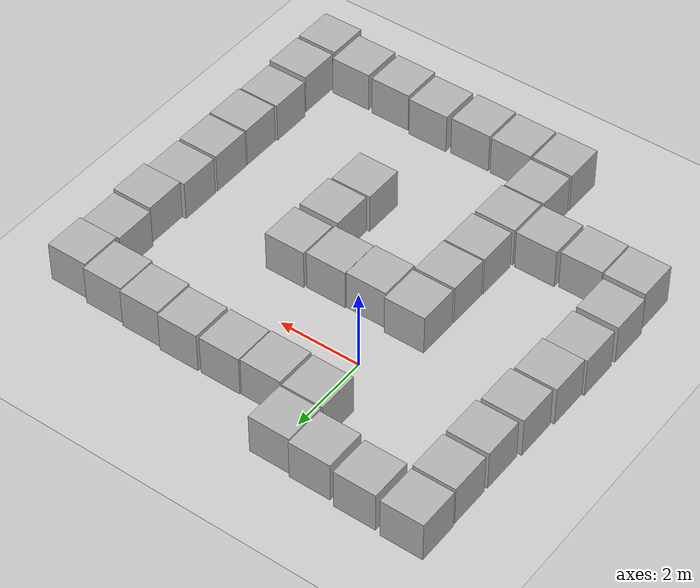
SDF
<sdf version='1.9'>
  <world name='empty'>
    <physics name='1ms' type='ignored'>
      <max_step_size>0.001</max_step_size>
      <real_time_factor>1</real_time_factor>
      <real_time_update_rate>1000</real_time_update_rate>
    </physics>
    <plugin name='gz::sim::systems::Physics' filename='ignition-gazebo-physics-system'/>
    <plugin name='gz::sim::systems::UserCommands' filename='ignition-gazebo-user-commands-system'/>
    <plugin name='gz::sim::systems::SceneBroadcaster' filename='ignition-gazebo-scene-broadcaster-system'/>
    <plugin name='gz::sim::systems::Contact' filename='ignition-gazebo-contact-system'/>
    <gravity>0 0 -9.8</gravity>
    <magnetic_field>6e-06 2.3e-05 -4.2e-05</magnetic_field>
    <atmosphere type='adiabatic'/>
    <scene>
      <ambient>0.4 0.4 0.4 1</ambient>
      <background>0.7 0.7 0.7 1</background>
      <shadows>true</shadows>
    </scene>
    <model name='ground_plane'>
      <static>true</static>
      <link name='link'>
        <collision name='collision'>
          <geometry>
            <plane>
              <normal>0 0 1</normal>
              <size>100 100</size>
            </plane>
          </geometry>
          <surface>
            <friction>
              <ode/>
            </friction>
            <bounce/>
            <contact/>
          </surface>
        </collision>
        <visual name='visual'>
          <geometry>
            <plane>
              <normal>0 0 1</normal>
              <size>100 100</size>
            </plane>
          </geometry>
          <material>
            <ambient>0.8 0.8 0.8 1</ambient>
            <diffuse>0.8 0.8 0.8 1</diffuse>
            <specular>0.8 0.8 0.8 1</specular>
          </material>
        </visual>
        <pose>0 0 0 0 -0 0</pose>
        <inertial>
          <pose>0 0 0 0 -0 0</pose>
          <mass>1</mass>
          <inertia>
            <ixx>1</ixx>
            <ixy>0</ixy>
            <ixz>0</ixz>
            <iyy>1</iyy>
            <iyz>0</iyz>
            <izz>1</izz>
          </inertia>
        </inertial>
        <enable_wind>false</enable_wind>
      </link>
      <pose>0 0 0 0 -0 0</pose>
      <self_collide>false</self_collide>
    </model>
    <model name='box'>
      <pose>-0.363355 -1.55008 0.5 0 -0 0</pose>
      <link name='box_link'>
        <inertial>
          <inertia>
            <ixx>0.16666</ixx>
            <ixy>0</ixy>
            <ixz>0</ixz>
            <iyy>0.16666</iyy>
            <iyz>0</iyz>
            <izz>0.16666</izz>
          </inertia>
          <mass>1</mass>
          <pose>0 0 0 0 -0 0</pose>
        </inertial>
        <collision name='box_collision'>
          <geometry>
            <box>
              <size>1 1 1</size>
            </box>
          </geometry>
          <surface>
            <friction>
              <ode/>
            </friction>
            <bounce/>
            <contact/>
          </surface>
        </collision>
        <visual name='box_visual'>
          <geometry>
            <box>
              <size>1 1 1</size>
            </box>
          </geometry>
          <material>
            <ambient>0.3 0.3 0.3 1</ambient>
            <diffuse>0.7 0.7 0.7 1</diffuse>
            <specular>1 1 1 1</specular>
          </material>
        </visual>
        <pose>0 0 0 0 -0 0</pose>
        <enable_wind>false</enable_wind>
      </link>
      <static>false</static>
      <self_collide>false</self_collide>
    </model>
    <model name='box_0'>
      <pose>-0.36377 -2.60974 0.5 0 -0 0</pose>
      <link name='box_link'>
        <inertial>
          <inertia>
            <ixx>0.16666</ixx>
            <ixy>0</ixy>
            <ixz>0</ixz>
            <iyy>0.16666</iyy>
            <iyz>0</iyz>
            <izz>0.16666</izz>
          </inertia>
          <mass>1</mass>
          <pose>0 0 0 0 -0 0</pose>
        </inertial>
        <collision name='box_collision'>
          <geometry>
            <box>
              <size>1 1 1</size>
            </box>
          </geometry>
          <surface>
            <friction>
              <ode/>
            </friction>
            <bounce/>
            <contact/>
          </surface>
        </collision>
        <visual name='box_visual'>
          <geometry>
            <box>
              <size>1 1 1</size>
            </box>
          </geometry>
          <material>
            <ambient>0.3 0.3 0.3 1</ambient>
            <diffuse>0.7 0.7 0.7 1</diffuse>
            <specular>1 1 1 1</specular>
          </material>
        </visual>
        <pose>0 0 0 0 -0 0</pose>
        <enable_wind>false</enable_wind>
      </link>
      <static>false</static>
      <self_collide>false</self_collide>
    </model>
    <model name='box_1'>
      <pose>-0.375944 -3.64921 0.5 0 -0 0</pose>
      <link name='box_link'>
        <inertial>
          <inertia>
            <ixx>0.16666</ixx>
            <ixy>0</ixy>
            <ixz>0</ixz>
            <iyy>0.16666</iyy>
            <iyz>0</iyz>
            <izz>0.16666</izz>
          </inertia>
          <mass>1</mass>
          <pose>0 0 0 0 -0 0</pose>
        </inertial>
        <collision name='box_collision'>
          <geometry>
            <box>
              <size>1 1 1</size>
            </box>
          </geometry>
          <surface>
            <friction>
              <ode/>
            </friction>
            <bounce/>
            <contact/>
          </surface>
        </collision>
        <visual name='box_visual'>
          <geometry>
            <box>
              <size>1 1 1</size>
            </box>
          </geometry>
          <material>
            <ambient>0.3 0.3 0.3 1</ambient>
            <diffuse>0.7 0.7 0.7 1</diffuse>
            <specular>1 1 1 1</specular>
          </material>
        </visual>
        <pose>0 0 0 0 -0 0</pose>
        <enable_wind>false</enable_wind>
      </link>
      <static>false</static>
      <self_collide>false</self_collide>
    </model>
    <model name='box_2'>
      <pose>-0.389689 -4.73155 0.5 0 -0 0</pose>
      <link name='box_link'>
        <inertial>
          <inertia>
            <ixx>0.16666</ixx>
            <ixy>0</ixy>
            <ixz>0</ixz>
            <iyy>0.16666</iyy>
            <iyz>0</iyz>
            <izz>0.16666</izz>
          </inertia>
          <mass>1</mass>
          <pose>0 0 0 0 -0 0</pose>
        </inertial>
        <collision name='box_collision'>
          <geometry>
            <box>
              <size>1 1 1</size>
            </box>
          </geometry>
          <surface>
            <friction>
              <ode/>
            </friction>
            <bounce/>
            <contact/>
          </surface>
        </collision>
        <visual name='box_visual'>
          <geometry>
            <box>
              <size>1 1 1</size>
            </box>
          </geometry>
          <material>
            <ambient>0.3 0.3 0.3 1</ambient>
            <diffuse>0.7 0.7 0.7 1</diffuse>
            <specular>1 1 1 1</specular>
          </material>
        </visual>
        <pose>0 0 0 0 -0 0</pose>
        <enable_wind>false</enable_wind>
      </link>
      <static>false</static>
      <self_collide>false</self_collide>
    </model>
    <model name='box_3'>
      <pose>-1.44329 -4.71435 0.5 0 -0 0</pose>
      <link name='box_link'>
        <inertial>
          <inertia>
            <ixx>0.16666</ixx>
            <ixy>0</ixy>
            <ixz>0</ixz>
            <iyy>0.16666</iyy>
            <iyz>0</iyz>
            <izz>0.16666</izz>
          </inertia>
          <mass>1</mass>
          <pose>0 0 0 0 -0 0</pose>
        </inertial>
        <collision name='box_collision'>
          <geometry>
            <box>
              <size>1 1 1</size>
            </box>
          </geometry>
          <surface>
            <friction>
              <ode/>
            </friction>
            <bounce/>
            <contact/>
          </surface>
        </collision>
        <visual name='box_visual'>
          <geometry>
            <box>
              <size>1 1 1</size>
            </box>
          </geometry>
          <material>
            <ambient>0.3 0.3 0.3 1</ambient>
            <diffuse>0.7 0.7 0.7 1</diffuse>
            <specular>1 1 1 1</specular>
          </material>
        </visual>
        <pose>0 0 0 0 -0 0</pose>
        <enable_wind>false</enable_wind>
      </link>
      <static>false</static>
      <self_collide>false</self_collide>
    </model>
    <model name='box_4'>
      <pose>-2.5158 -4.77183 0.5 0 -0 0</pose>
      <link name='box_link'>
        <inertial>
          <inertia>
            <ixx>0.16666</ixx>
            <ixy>0</ixy>
            <ixz>0</ixz>
            <iyy>0.16666</iyy>
            <iyz>0</iyz>
            <izz>0.16666</izz>
          </inertia>
          <mass>1</mass>
          <pose>0 0 0 0 -0 0</pose>
        </inertial>
        <collision name='box_collision'>
          <geometry>
            <box>
              <size>1 1 1</size>
            </box>
          </geometry>
          <surface>
            <friction>
              <ode/>
            </friction>
            <bounce/>
            <contact/>
          </surface>
        </collision>
        <visual name='box_visual'>
          <geometry>
            <box>
              <size>1 1 1</size>
            </box>
          </geometry>
          <material>
            <ambient>0.3 0.3 0.3 1</ambient>
            <diffuse>0.7 0.7 0.7 1</diffuse>
            <specular>1 1 1 1</specular>
          </material>
        </visual>
        <pose>0 0 0 0 -0 0</pose>
        <enable_wind>false</enable_wind>
      </link>
      <static>false</static>
      <self_collide>false</self_collide>
    </model>
    <model name='box_5'>
      <pose>-3.55289 -4.76155 0.5 0 -0 0</pose>
      <link name='box_link'>
        <inertial>
          <inertia>
            <ixx>0.16666</ixx>
            <ixy>0</ixy>
            <ixz>0</ixz>
            <iyy>0.16666</iyy>
            <iyz>0</iyz>
            <izz>0.16666</izz>
          </inertia>
          <mass>1</mass>
          <pose>0 0 0 0 -0 0</pose>
        </inertial>
        <collision name='box_collision'>
          <geometry>
            <box>
              <size>1 1 1</size>
            </box>
          </geometry>
          <surface>
            <friction>
              <ode/>
            </friction>
            <bounce/>
            <contact/>
          </surface>
        </collision>
        <visual name='box_visual'>
          <geometry>
            <box>
              <size>1 1 1</size>
            </box>
          </geometry>
          <material>
            <ambient>0.3 0.3 0.3 1</ambient>
            <diffuse>0.7 0.7 0.7 1</diffuse>
            <specular>1 1 1 1</specular>
          </material>
        </visual>
        <pose>0 0 0 0 -0 0</pose>
        <enable_wind>false</enable_wind>
      </link>
      <static>false</static>
      <self_collide>false</self_collide>
    </model>
    <model name='box_6'>
      <pose>-0.168549 1.56742 0.5 0 -0 0</pose>
      <link name='box_link'>
        <inertial>
          <inertia>
            <ixx>0.16666</ixx>
            <ixy>0</ixy>
            <ixz>0</ixz>
            <iyy>0.16666</iyy>
            <iyz>0</iyz>
            <izz>0.16666</izz>
          </inertia>
          <mass>1</mass>
          <pose>0 0 0 0 -0 0</pose>
        </inertial>
        <collision name='box_collision'>
          <geometry>
            <box>
              <size>1 1 1</size>
            </box>
          </geometry>
          <surface>
            <friction>
              <ode/>
            </friction>
            <bounce/>
            <contact/>
          </surface>
        </collision>
        <visual name='box_visual'>
          <geometry>
            <box>
              <size>1 1 1</size>
            </box>
          </geometry>
          <material>
            <ambient>0.3 0.3 0.3 1</ambient>
            <diffuse>0.7 0.7 0.7 1</diffuse>
            <specular>1 1 1 1</specular>
          </material>
        </visual>
        <pose>0 0 0 0 -0 0</pose>
        <enable_wind>false</enable_wind>
      </link>
      <static>false</static>
      <self_collide>false</self_collide>
    </model>
    <model name='box_7'>
      <pose>0.68029 -1.65894 0.5 0 -0 0</pose>
      <link name='box_link'>
        <inertial>
          <inertia>
            <ixx>0.16666</ixx>
            <ixy>0</ixy>
            <ixz>0</ixz>
            <iyy>0.16666</iyy>
            <iyz>0</iyz>
            <izz>0.16666</izz>
          </inertia>
          <mass>1</mass>
          <pose>0 0 0 0 -0 0</pose>
        </inertial>
        <collision name='box_collision'>
          <geometry>
            <box>
              <size>1 1 1</size>
            </box>
          </geometry>
          <surface>
            <friction>
              <ode/>
            </friction>
            <bounce/>
            <contact/>
          </surface>
        </collision>
        <visual name='box_visual'>
          <geometry>
            <box>
              <size>1 1 1</size>
            </box>
          </geometry>
          <material>
            <ambient>0.3 0.3 0.3 1</ambient>
            <diffuse>0.7 0.7 0.7 1</diffuse>
            <specular>1 1 1 1</specular>
          </material>
        </visual>
        <pose>0 0 0 0 -0 0</pose>
        <enable_wind>false</enable_wind>
      </link>
      <static>false</static>
      <self_collide>false</self_collide>
    </model>
    <model name='box_8'>
      <pose>0.900863 1.53444 0.5 0 -0 0</pose>
      <link name='box_link'>
        <inertial>
          <inertia>
            <ixx>0.16666</ixx>
            <ixy>0</ixy>
            <ixz>0</ixz>
            <iyy>0.16666</iyy>
            <iyz>0</iyz>
            <izz>0.16666</izz>
          </inertia>
          <mass>1</mass>
          <pose>0 0 0 0 -0 0</pose>
        </inertial>
        <collision name='box_collision'>
          <geometry>
            <box>
              <size>1 1 1</size>
            </box>
          </geometry>
          <surface>
            <friction>
              <ode/>
            </friction>
            <bounce/>
            <contact/>
          </surface>
        </collision>
        <visual name='box_visual'>
          <geometry>
            <box>
              <size>1 1 1</size>
            </box>
          </geometry>
          <material>
            <ambient>0.3 0.3 0.3 1</ambient>
            <diffuse>0.7 0.7 0.7 1</diffuse>
            <specular>1 1 1 1</specular>
          </material>
        </visual>
        <pose>0 0 0 0 -0 0</pose>
        <enable_wind>false</enable_wind>
      </link>
      <static>false</static>
      <self_collide>false</self_collide>
    </model>
    <model name='box_9'>
      <pose>1.92744 1.55272 0.5 0 -0 0</pose>
      <link name='box_link'>
        <inertial>
          <inertia>
            <ixx>0.16666</ixx>
            <ixy>0</ixy>
            <ixz>0</ixz>
            <iyy>0.16666</iyy>
            <iyz>0</iyz>
            <izz>0.16666</izz>
          </inertia>
          <mass>1</mass>
          <pose>0 0 0 0 -0 0</pose>
        </inertial>
        <collision name='box_collision'>
          <geometry>
            <box>
              <size>1 1 1</size>
            </box>
          </geometry>
          <surface>
            <friction>
              <ode/>
            </friction>
            <bounce/>
            <contact/>
          </surface>
        </collision>
        <visual name='box_visual'>
          <geometry>
            <box>
              <size>1 1 1</size>
            </box>
          </geometry>
          <material>
            <ambient>0.3 0.3 0.3 1</ambient>
            <diffuse>0.7 0.7 0.7 1</diffuse>
            <specular>1 1 1 1</specular>
          </material>
        </visual>
        <pose>0 0 0 0 -0 0</pose>
        <enable_wind>false</enable_wind>
      </link>
      <static>false</static>
      <self_collide>false</self_collide>
    </model>
    <model name='box_10'>
      <pose>1.68495 -1.63105 0.5 0 -0 0</pose>
      <link name='box_link'>
        <inertial>
          <inertia>
            <ixx>0.16666</ixx>
            <ixy>0</ixy>
            <ixz>0</ixz>
            <iyy>0.16666</iyy>
            <iyz>0</iyz>
            <izz>0.16666</izz>
          </inertia>
          <mass>1</mass>
          <pose>0 0 0 0 -0 0</pose>
        </inertial>
        <collision name='box_collision'>
          <geometry>
            <box>
              <size>1 1 1</size>
            </box>
          </geometry>
          <surface>
            <friction>
              <ode/>
            </friction>
            <bounce/>
            <contact/>
          </surface>
        </collision>
        <visual name='box_visual'>
          <geometry>
            <box>
              <size>1 1 1</size>
            </box>
          </geometry>
          <material>
            <ambient>0.3 0.3 0.3 1</ambient>
            <diffuse>0.7 0.7 0.7 1</diffuse>
            <specular>1 1 1 1</specular>
          </material>
        </visual>
        <pose>0 0 0 0 -0 0</pose>
        <enable_wind>false</enable_wind>
      </link>
      <static>false</static>
      <self_collide>false</self_collide>
    </model>
    <model name='box_11'>
      <pose>3.00017 1.55747 0.5 0 -0 0</pose>
      <link name='box_link'>
        <inertial>
          <inertia>
            <ixx>0.16666</ixx>
            <ixy>0</ixy>
            <ixz>0</ixz>
            <iyy>0.16666</iyy>
            <iyz>0</iyz>
            <izz>0.16666</izz>
          </inertia>
          <mass>1</mass>
          <pose>0 0 0 0 -0 0</pose>
        </inertial>
        <collision name='box_collision'>
          <geometry>
            <box>
              <size>1 1 1</size>
            </box>
          </geometry>
          <surface>
            <friction>
              <ode/>
            </friction>
            <bounce/>
            <contact/>
          </surface>
        </collision>
        <visual name='box_visual'>
          <geometry>
            <box>
              <size>1 1 1</size>
            </box>
          </geometry>
          <material>
            <ambient>0.3 0.3 0.3 1</ambient>
            <diffuse>0.7 0.7 0.7 1</diffuse>
            <specular>1 1 1 1</specular>
          </material>
        </visual>
        <pose>0 0 0 0 -0 0</pose>
        <enable_wind>false</enable_wind>
      </link>
      <static>false</static>
      <self_collide>false</self_collide>
    </model>
    <model name='box_12'>
      <pose>4.04417 1.49574 0.5 0 -0 0</pose>
      <link name='box_link'>
        <inertial>
          <inertia>
            <ixx>0.16666</ixx>
            <ixy>0</ixy>
            <ixz>0</ixz>
            <iyy>0.16666</iyy>
            <iyz>0</iyz>
            <izz>0.16666</izz>
          </inertia>
          <mass>1</mass>
          <pose>0 0 0 0 -0 0</pose>
        </inertial>
        <collision name='box_collision'>
          <geometry>
            <box>
              <size>1 1 1</size>
            </box>
          </geometry>
          <surface>
            <friction>
              <ode/>
            </friction>
            <bounce/>
            <contact/>
          </surface>
        </collision>
        <visual name='box_visual'>
          <geometry>
            <box>
              <size>1 1 1</size>
            </box>
          </geometry>
          <material>
            <ambient>0.3 0.3 0.3 1</ambient>
            <diffuse>0.7 0.7 0.7 1</diffuse>
            <specular>1 1 1 1</specular>
          </material>
        </visual>
        <pose>0 0 0 0 -0 0</pose>
        <enable_wind>false</enable_wind>
      </link>
      <static>false</static>
      <self_collide>false</self_collide>
    </model>
    <model name='box_13'>
      <pose>5.07511 1.43249 0.5 0 -0 0</pose>
      <link name='box_link'>
        <inertial>
          <inertia>
            <ixx>0.16666</ixx>
            <ixy>0</ixy>
            <ixz>0</ixz>
            <iyy>0.16666</iyy>
            <iyz>0</iyz>
            <izz>0.16666</izz>
          </inertia>
          <mass>1</mass>
          <pose>0 0 0 0 -0 0</pose>
        </inertial>
        <collision name='box_collision'>
          <geometry>
            <box>
              <size>1 1 1</size>
            </box>
          </geometry>
          <surface>
            <friction>
              <ode/>
            </friction>
            <bounce/>
            <contact/>
          </surface>
        </collision>
        <visual name='box_visual'>
          <geometry>
            <box>
              <size>1 1 1</size>
            </box>
          </geometry>
          <material>
            <ambient>0.3 0.3 0.3 1</ambient>
            <diffuse>0.7 0.7 0.7 1</diffuse>
            <specular>1 1 1 1</specular>
          </material>
        </visual>
        <pose>0 0 0 0 -0 0</pose>
        <enable_wind>false</enable_wind>
      </link>
      <static>false</static>
      <self_collide>false</self_collide>
    </model>
    <model name='box_14'>
      <pose>6.11634 1.33491 0.5 0 -0 0</pose>
      <link name='box_link'>
        <inertial>
          <inertia>
            <ixx>0.16666</ixx>
            <ixy>0</ixy>
            <ixz>0</ixz>
            <iyy>0.16666</iyy>
            <iyz>0</iyz>
            <izz>0.16666</izz>
          </inertia>
          <mass>1</mass>
          <pose>0 0 0 0 -0 0</pose>
        </inertial>
        <collision name='box_collision'>
          <geometry>
            <box>
              <size>1 1 1</size>
            </box>
          </geometry>
          <surface>
            <friction>
              <ode/>
            </friction>
            <bounce/>
            <contact/>
          </surface>
        </collision>
        <visual name='box_visual'>
          <geometry>
            <box>
              <size>1 1 1</size>
            </box>
          </geometry>
          <material>
            <ambient>0.3 0.3 0.3 1</ambient>
            <diffuse>0.7 0.7 0.7 1</diffuse>
            <specular>1 1 1 1</specular>
          </material>
        </visual>
        <pose>0 0 0 0 -0 0</pose>
        <enable_wind>false</enable_wind>
      </link>
      <static>false</static>
      <self_collide>false</self_collide>
    </model>
    <model name='box_15'>
      <pose>6.04781 0.334521 0.5 0 -0 0</pose>
      <link name='box_link'>
        <inertial>
          <inertia>
            <ixx>0.16666</ixx>
            <ixy>0</ixy>
            <ixz>0</ixz>
            <iyy>0.16666</iyy>
            <iyz>0</iyz>
            <izz>0.16666</izz>
          </inertia>
          <mass>1</mass>
          <pose>0 0 0 0 -0 0</pose>
        </inertial>
        <collision name='box_collision'>
          <geometry>
            <box>
              <size>1 1 1</size>
            </box>
          </geometry>
          <surface>
            <friction>
              <ode/>
            </friction>
            <bounce/>
            <contact/>
          </surface>
        </collision>
        <visual name='box_visual'>
          <geometry>
            <box>
              <size>1 1 1</size>
            </box>
          </geometry>
          <material>
            <ambient>0.3 0.3 0.3 1</ambient>
            <diffuse>0.7 0.7 0.7 1</diffuse>
            <specular>1 1 1 1</specular>
          </material>
        </visual>
        <pose>0 0 0 0 -0 0</pose>
        <enable_wind>false</enable_wind>
      </link>
      <static>false</static>
      <self_collide>false</self_collide>
    </model>
    <model name='box_16'>
      <pose>6.12571 -0.741537 0.5 0 -0 0</pose>
      <link name='box_link'>
        <inertial>
          <inertia>
            <ixx>0.16666</ixx>
            <ixy>0</ixy>
            <ixz>0</ixz>
            <iyy>0.16666</iyy>
            <iyz>0</iyz>
            <izz>0.16666</izz>
          </inertia>
          <mass>1</mass>
          <pose>0 0 0 0 -0 0</pose>
        </inertial>
        <collision name='box_collision'>
          <geometry>
            <box>
              <size>1 1 1</size>
            </box>
          </geometry>
          <surface>
            <friction>
              <ode/>
            </friction>
            <bounce/>
            <contact/>
          </surface>
        </collision>
        <visual name='box_visual'>
          <geometry>
            <box>
              <size>1 1 1</size>
            </box>
          </geometry>
          <material>
            <ambient>0.3 0.3 0.3 1</ambient>
            <diffuse>0.7 0.7 0.7 1</diffuse>
            <specular>1 1 1 1</specular>
          </material>
        </visual>
        <pose>0 0 0 0 -0 0</pose>
        <enable_wind>false</enable_wind>
      </link>
      <static>false</static>
      <self_collide>false</self_collide>
    </model>
    <model name='box_17'>
      <pose>6.01872 -1.73584 0.5 0 -0 0</pose>
      <link name='box_link'>
        <inertial>
          <inertia>
            <ixx>0.16666</ixx>
            <ixy>0</ixy>
            <ixz>0</ixz>
            <iyy>0.16666</iyy>
            <iyz>0</iyz>
            <izz>0.16666</izz>
          </inertia>
          <mass>1</mass>
          <pose>0 0 0 0 -0 0</pose>
        </inertial>
        <collision name='box_collision'>
          <geometry>
            <box>
              <size>1 1 1</size>
            </box>
          </geometry>
          <surface>
            <friction>
              <ode/>
            </friction>
            <bounce/>
            <contact/>
          </surface>
        </collision>
        <visual name='box_visual'>
          <geometry>
            <box>
              <size>1 1 1</size>
            </box>
          </geometry>
          <material>
            <ambient>0.3 0.3 0.3 1</ambient>
            <diffuse>0.7 0.7 0.7 1</diffuse>
            <specular>1 1 1 1</specular>
          </material>
        </visual>
        <pose>0 0 0 0 -0 0</pose>
        <enable_wind>false</enable_wind>
      </link>
      <static>false</static>
      <self_collide>false</self_collide>
    </model>
    <model name='box_18'>
      <pose>6.02223 -2.80799 0.5 0 -0 0</pose>
      <link name='box_link'>
        <inertial>
          <inertia>
            <ixx>0.16666</ixx>
            <ixy>0</ixy>
            <ixz>0</ixz>
            <iyy>0.16666</iyy>
            <iyz>0</iyz>
            <izz>0.16666</izz>
          </inertia>
          <mass>1</mass>
          <pose>0 0 0 0 -0 0</pose>
        </inertial>
        <collision name='box_collision'>
          <geometry>
            <box>
              <size>1 1 1</size>
            </box>
          </geometry>
          <surface>
            <friction>
              <ode/>
            </friction>
            <bounce/>
            <contact/>
          </surface>
        </collision>
        <visual name='box_visual'>
          <geometry>
            <box>
              <size>1 1 1</size>
            </box>
          </geometry>
          <material>
            <ambient>0.3 0.3 0.3 1</ambient>
            <diffuse>0.7 0.7 0.7 1</diffuse>
            <specular>1 1 1 1</specular>
          </material>
        </visual>
        <pose>0 0 0 0 -0 0</pose>
        <enable_wind>false</enable_wind>
      </link>
      <static>false</static>
      <self_collide>false</self_collide>
    </model>
    <model name='box_19'>
      <pose>2.7248 -1.58644 0.5 0 -0 0</pose>
      <link name='box_link'>
        <inertial>
          <inertia>
            <ixx>0.16666</ixx>
            <ixy>0</ixy>
            <ixz>0</ixz>
            <iyy>0.16666</iyy>
            <iyz>0</iyz>
            <izz>0.16666</izz>
          </inertia>
          <mass>1</mass>
          <pose>0 0 0 0 -0 0</pose>
        </inertial>
        <collision name='box_collision'>
          <geometry>
            <box>
              <size>1 1 1</size>
            </box>
          </geometry>
          <surface>
            <friction>
              <ode/>
            </friction>
            <bounce/>
            <contact/>
          </surface>
        </collision>
        <visual name='box_visual'>
          <geometry>
            <box>
              <size>1 1 1</size>
            </box>
          </geometry>
          <material>
            <ambient>0.3 0.3 0.3 1</ambient>
            <diffuse>0.7 0.7 0.7 1</diffuse>
            <specular>1 1 1 1</specular>
          </material>
        </visual>
        <pose>0 0 0 0 -0 0</pose>
        <enable_wind>false</enable_wind>
      </link>
      <static>false</static>
      <self_collide>false</self_collide>
    </model>
    <model name='box_20'>
      <pose>2.6887 -2.71915 0.5 0 -0 0</pose>
      <link name='box_link'>
        <inertial>
          <inertia>
            <ixx>0.16666</ixx>
            <ixy>0</ixy>
            <ixz>0</ixz>
            <iyy>0.16666</iyy>
            <iyz>0</iyz>
            <izz>0.16666</izz>
          </inertia>
          <mass>1</mass>
          <pose>0 0 0 0 -0 0</pose>
        </inertial>
        <collision name='box_collision'>
          <geometry>
            <box>
              <size>1 1 1</size>
            </box>
          </geometry>
          <surface>
            <friction>
              <ode/>
            </friction>
            <bounce/>
            <contact/>
          </surface>
        </collision>
        <visual name='box_visual'>
          <geometry>
            <box>
              <size>1 1 1</size>
            </box>
          </geometry>
          <material>
            <ambient>0.3 0.3 0.3 1</ambient>
            <diffuse>0.7 0.7 0.7 1</diffuse>
            <specular>1 1 1 1</specular>
          </material>
        </visual>
        <pose>0 0 0 0 -0 0</pose>
        <enable_wind>false</enable_wind>
      </link>
      <static>false</static>
      <self_collide>false</self_collide>
    </model>
    <model name='box_21'>
      <pose>2.6269 -3.76194 0.5 0 -0 0</pose>
      <link name='box_link'>
        <inertial>
          <inertia>
            <ixx>0.16666</ixx>
            <ixy>0</ixy>
            <ixz>0</ixz>
            <iyy>0.16666</iyy>
            <iyz>0</iyz>
            <izz>0.16666</izz>
          </inertia>
          <mass>1</mass>
          <pose>0 0 0 0 -0 0</pose>
        </inertial>
        <collision name='box_collision'>
          <geometry>
            <box>
              <size>1 1 1</size>
            </box>
          </geometry>
          <surface>
            <friction>
              <ode/>
            </friction>
            <bounce/>
            <contact/>
          </surface>
        </collision>
        <visual name='box_visual'>
          <geometry>
            <box>
              <size>1 1 1</size>
            </box>
          </geometry>
          <material>
            <ambient>0.3 0.3 0.3 1</ambient>
            <diffuse>0.7 0.7 0.7 1</diffuse>
            <specular>1 1 1 1</specular>
          </material>
        </visual>
        <pose>0 0 0 0 -0 0</pose>
        <enable_wind>false</enable_wind>
      </link>
      <static>false</static>
      <self_collide>false</self_collide>
    </model>
    <model name='box_22'>
      <pose>6.02686 -3.85196 0.5 0 -0 0</pose>
      <link name='box_link'>
        <inertial>
          <inertia>
            <ixx>0.16666</ixx>
            <ixy>0</ixy>
            <ixz>0</ixz>
            <iyy>0.16666</iyy>
            <iyz>0</iyz>
            <izz>0.16666</izz>
          </inertia>
          <mass>1</mass>
          <pose>0 0 0 0 -0 0</pose>
        </inertial>
        <collision name='box_collision'>
          <geometry>
            <box>
              <size>1 1 1</size>
            </box>
          </geometry>
          <surface>
            <friction>
              <ode/>
            </friction>
            <bounce/>
            <contact/>
          </surface>
        </collision>
        <visual name='box_visual'>
          <geometry>
            <box>
              <size>1 1 1</size>
            </box>
          </geometry>
          <material>
            <ambient>0.3 0.3 0.3 1</ambient>
            <diffuse>0.7 0.7 0.7 1</diffuse>
            <specular>1 1 1 1</specular>
          </material>
        </visual>
        <pose>0 0 0 0 -0 0</pose>
        <enable_wind>false</enable_wind>
      </link>
      <static>false</static>
      <self_collide>false</self_collide>
    </model>
    <model name='box_23'>
      <pose>5.99389 -4.88862 0.5 0 -0 0</pose>
      <link name='box_link'>
        <inertial>
          <inertia>
            <ixx>0.16666</ixx>
            <ixy>0</ixy>
            <ixz>0</ixz>
            <iyy>0.16666</iyy>
            <iyz>0</iyz>
            <izz>0.16666</izz>
          </inertia>
          <mass>1</mass>
          <pose>0 0 0 0 -0 0</pose>
        </inertial>
        <collision name='box_collision'>
          <geometry>
            <box>
              <size>1 1 1</size>
            </box>
          </geometry>
          <surface>
            <friction>
              <ode/>
            </friction>
            <bounce/>
            <contact/>
          </surface>
        </collision>
        <visual name='box_visual'>
          <geometry>
            <box>
              <size>1 1 1</size>
            </box>
          </geometry>
          <material>
            <ambient>0.3 0.3 0.3 1</ambient>
            <diffuse>0.7 0.7 0.7 1</diffuse>
            <specular>1 1 1 1</specular>
          </material>
        </visual>
        <pose>0 0 0 0 -0 0</pose>
        <enable_wind>false</enable_wind>
      </link>
      <static>false</static>
      <self_collide>false</self_collide>
    </model>
    <model name='box_24'>
      <pose>6.07092 -6.02148 0.5 0 -0 0</pose>
      <link name='box_link'>
        <inertial>
          <inertia>
            <ixx>0.16666</ixx>
            <ixy>0</ixy>
            <ixz>0</ixz>
            <iyy>0.16666</iyy>
            <iyz>0</iyz>
            <izz>0.16666</izz>
          </inertia>
          <mass>1</mass>
          <pose>0 0 0 0 -0 0</pose>
        </inertial>
        <collision name='box_collision'>
          <geometry>
            <box>
              <size>1 1 1</size>
            </box>
          </geometry>
          <surface>
            <friction>
              <ode/>
            </friction>
            <bounce/>
            <contact/>
          </surface>
        </collision>
        <visual name='box_visual'>
          <geometry>
            <box>
              <size>1 1 1</size>
            </box>
          </geometry>
          <material>
            <ambient>0.3 0.3 0.3 1</ambient>
            <diffuse>0.7 0.7 0.7 1</diffuse>
            <specular>1 1 1 1</specular>
          </material>
        </visual>
        <pose>0 0 0 0 -0 0</pose>
        <enable_wind>false</enable_wind>
      </link>
      <static>false</static>
      <self_collide>false</self_collide>
    </model>
    <model name='box_25'>
      <pose>6.0747 -7.10246 0.5 0 -0 0</pose>
      <link name='box_link'>
        <inertial>
          <inertia>
            <ixx>0.16666</ixx>
            <ixy>0</ixy>
            <ixz>0</ixz>
            <iyy>0.16666</iyy>
            <iyz>0</iyz>
            <izz>0.16666</izz>
          </inertia>
          <mass>1</mass>
          <pose>0 0 0 0 -0 0</pose>
        </inertial>
        <collision name='box_collision'>
          <geometry>
            <box>
              <size>1 1 1</size>
            </box>
          </geometry>
          <surface>
            <friction>
              <ode/>
            </friction>
            <bounce/>
            <contact/>
          </surface>
        </collision>
        <visual name='box_visual'>
          <geometry>
            <box>
              <size>1 1 1</size>
            </box>
          </geometry>
          <material>
            <ambient>0.3 0.3 0.3 1</ambient>
            <diffuse>0.7 0.7 0.7 1</diffuse>
            <specular>1 1 1 1</specular>
          </material>
        </visual>
        <pose>0 0 0 0 -0 0</pose>
        <enable_wind>false</enable_wind>
      </link>
      <static>false</static>
      <self_collide>false</self_collide>
    </model>
    <model name='box_26'>
      <pose>4.98481 -6.91629 0.5 0 -0 0</pose>
      <link name='box_link'>
        <inertial>
          <inertia>
            <ixx>0.16666</ixx>
            <ixy>0</ixy>
            <ixz>0</ixz>
            <iyy>0.16666</iyy>
            <iyz>0</iyz>
            <izz>0.16666</izz>
          </inertia>
          <mass>1</mass>
          <pose>0 0 0 0 -0 0</pose>
        </inertial>
        <collision name='box_collision'>
          <geometry>
            <box>
              <size>1 1 1</size>
            </box>
          </geometry>
          <surface>
            <friction>
              <ode/>
            </friction>
            <bounce/>
            <contact/>
          </surface>
        </collision>
        <visual name='box_visual'>
          <geometry>
            <box>
              <size>1 1 1</size>
            </box>
          </geometry>
          <material>
            <ambient>0.3 0.3 0.3 1</ambient>
            <diffuse>0.7 0.7 0.7 1</diffuse>
            <specular>1 1 1 1</specular>
          </material>
        </visual>
        <pose>0 0 0 0 -0 0</pose>
        <enable_wind>false</enable_wind>
      </link>
      <static>false</static>
      <self_collide>false</self_collide>
    </model>
    <model name='box_27'>
      <pose>3.86946 -6.88244 0.5 0 -0 0</pose>
      <link name='box_link'>
        <inertial>
          <inertia>
            <ixx>0.16666</ixx>
            <ixy>0</ixy>
            <ixz>0</ixz>
            <iyy>0.16666</iyy>
            <iyz>0</iyz>
            <izz>0.16666</izz>
          </inertia>
          <mass>1</mass>
          <pose>0 0 0 0 -0 0</pose>
        </inertial>
        <collision name='box_collision'>
          <geometry>
            <box>
              <size>1 1 1</size>
            </box>
          </geometry>
          <surface>
            <friction>
              <ode/>
            </friction>
            <bounce/>
            <contact/>
          </surface>
        </collision>
        <visual name='box_visual'>
          <geometry>
            <box>
              <size>1 1 1</size>
            </box>
          </geometry>
          <material>
            <ambient>0.3 0.3 0.3 1</ambient>
            <diffuse>0.7 0.7 0.7 1</diffuse>
            <specular>1 1 1 1</specular>
          </material>
        </visual>
        <pose>0 0 0 0 -0 0</pose>
        <enable_wind>false</enable_wind>
      </link>
      <static>false</static>
      <self_collide>false</self_collide>
    </model>
    <model name='box_28'>
      <pose>2.78792 -6.80154 0.5 0 -0 0</pose>
      <link name='box_link'>
        <inertial>
          <inertia>
            <ixx>0.16666</ixx>
            <ixy>0</ixy>
            <ixz>0</ixz>
            <iyy>0.16666</iyy>
            <iyz>0</iyz>
            <izz>0.16666</izz>
          </inertia>
          <mass>1</mass>
          <pose>0 0 0 0 -0 0</pose>
        </inertial>
        <collision name='box_collision'>
          <geometry>
            <box>
              <size>1 1 1</size>
            </box>
          </geometry>
          <surface>
            <friction>
              <ode/>
            </friction>
            <bounce/>
            <contact/>
          </surface>
        </collision>
        <visual name='box_visual'>
          <geometry>
            <box>
              <size>1 1 1</size>
            </box>
          </geometry>
          <material>
            <ambient>0.3 0.3 0.3 1</ambient>
            <diffuse>0.7 0.7 0.7 1</diffuse>
            <specular>1 1 1 1</specular>
          </material>
        </visual>
        <pose>0 0 0 0 -0 0</pose>
        <enable_wind>false</enable_wind>
      </link>
      <static>false</static>
      <self_collide>false</self_collide>
    </model>
    <model name='box_29'>
      <pose>-0.149967 2.60658 0.5 0 -0 0</pose>
      <link name='box_link'>
        <inertial>
          <inertia>
            <ixx>0.16666</ixx>
            <ixy>0</ixy>
            <ixz>0</ixz>
            <iyy>0.16666</iyy>
            <iyz>0</iyz>
            <izz>0.16666</izz>
          </inertia>
          <mass>1</mass>
          <pose>0 0 0 0 -0 0</pose>
        </inertial>
        <collision name='box_collision'>
          <geometry>
            <box>
              <size>1 1 1</size>
            </box>
          </geometry>
          <surface>
            <friction>
              <ode/>
            </friction>
            <bounce/>
            <contact/>
          </surface>
        </collision>
        <visual name='box_visual'>
          <geometry>
            <box>
              <size>1 1 1</size>
            </box>
          </geometry>
          <material>
            <ambient>0.3 0.3 0.3 1</ambient>
            <diffuse>0.7 0.7 0.7 1</diffuse>
            <specular>1 1 1 1</specular>
          </material>
        </visual>
        <pose>0 0 0 0 -0 0</pose>
        <enable_wind>false</enable_wind>
      </link>
      <static>false</static>
      <self_collide>false</self_collide>
    </model>
    <model name='box_30'>
      <pose>-1.17386 2.66918 0.5 0 -0 0</pose>
      <link name='box_link'>
        <inertial>
          <inertia>
            <ixx>0.16666</ixx>
            <ixy>0</ixy>
            <ixz>0</ixz>
            <iyy>0.16666</iyy>
            <iyz>0</iyz>
            <izz>0.16666</izz>
          </inertia>
          <mass>1</mass>
          <pose>0 0 0 0 -0 0</pose>
        </inertial>
        <collision name='box_collision'>
          <geometry>
            <box>
              <size>1 1 1</size>
            </box>
          </geometry>
          <surface>
            <friction>
              <ode/>
            </friction>
            <bounce/>
            <contact/>
          </surface>
        </collision>
        <visual name='box_visual'>
          <geometry>
            <box>
              <size>1 1 1</size>
            </box>
          </geometry>
          <material>
            <ambient>0.3 0.3 0.3 1</ambient>
            <diffuse>0.7 0.7 0.7 1</diffuse>
            <specular>1 1 1 1</specular>
          </material>
        </visual>
        <pose>0 0 0 0 -0 0</pose>
        <enable_wind>false</enable_wind>
      </link>
      <static>false</static>
      <self_collide>false</self_collide>
    </model>
    <model name='box_31'>
      <pose>-2.30995 2.74851 0.5 0 -0 0</pose>
      <link name='box_link'>
        <inertial>
          <inertia>
            <ixx>0.16666</ixx>
            <ixy>0</ixy>
            <ixz>0</ixz>
            <iyy>0.16666</iyy>
            <iyz>0</iyz>
            <izz>0.16666</izz>
          </inertia>
          <mass>1</mass>
          <pose>0 0 0 0 -0 0</pose>
        </inertial>
        <collision name='box_collision'>
          <geometry>
            <box>
              <size>1 1 1</size>
            </box>
          </geometry>
          <surface>
            <friction>
              <ode/>
            </friction>
            <bounce/>
            <contact/>
          </surface>
        </collision>
        <visual name='box_visual'>
          <geometry>
            <box>
              <size>1 1 1</size>
            </box>
          </geometry>
          <material>
            <ambient>0.3 0.3 0.3 1</ambient>
            <diffuse>0.7 0.7 0.7 1</diffuse>
            <specular>1 1 1 1</specular>
          </material>
        </visual>
        <pose>0 0 0 0 -0 0</pose>
        <enable_wind>false</enable_wind>
      </link>
      <static>false</static>
      <self_collide>false</self_collide>
    </model>
    <model name='box_32'>
      <pose>-3.44302 2.79561 0.5 0 -0 0</pose>
      <link name='box_link'>
        <inertial>
          <inertia>
            <ixx>0.16666</ixx>
            <ixy>0</ixy>
            <ixz>0</ixz>
            <iyy>0.16666</iyy>
            <iyz>0</iyz>
            <izz>0.16666</izz>
          </inertia>
          <mass>1</mass>
          <pose>0 0 0 0 -0 0</pose>
        </inertial>
        <collision name='box_collision'>
          <geometry>
            <box>
              <size>1 1 1</size>
            </box>
          </geometry>
          <surface>
            <friction>
              <ode/>
            </friction>
            <bounce/>
            <contact/>
          </surface>
        </collision>
        <visual name='box_visual'>
          <geometry>
            <box>
              <size>1 1 1</size>
            </box>
          </geometry>
          <material>
            <ambient>0.3 0.3 0.3 1</ambient>
            <diffuse>0.7 0.7 0.7 1</diffuse>
            <specular>1 1 1 1</specular>
          </material>
        </visual>
        <pose>0 0 0 0 -0 0</pose>
        <enable_wind>false</enable_wind>
      </link>
      <static>false</static>
      <self_collide>false</self_collide>
    </model>
    <model name='box_33'>
      <pose>-3.42101 1.72891 0.5 0 -0 0</pose>
      <link name='box_link'>
        <inertial>
          <inertia>
            <ixx>0.16666</ixx>
            <ixy>0</ixy>
            <ixz>0</ixz>
            <iyy>0.16666</iyy>
            <iyz>0</iyz>
            <izz>0.16666</izz>
          </inertia>
          <mass>1</mass>
          <pose>0 0 0 0 -0 0</pose>
        </inertial>
        <collision name='box_collision'>
          <geometry>
            <box>
              <size>1 1 1</size>
            </box>
          </geometry>
          <surface>
            <friction>
              <ode/>
            </friction>
            <bounce/>
            <contact/>
          </surface>
        </collision>
        <visual name='box_visual'>
          <geometry>
            <box>
              <size>1 1 1</size>
            </box>
          </geometry>
          <material>
            <ambient>0.3 0.3 0.3 1</ambient>
            <diffuse>0.7 0.7 0.7 1</diffuse>
            <specular>1 1 1 1</specular>
          </material>
        </visual>
        <pose>0 0 0 0 -0 0</pose>
        <enable_wind>false</enable_wind>
      </link>
      <static>false</static>
      <self_collide>false</self_collide>
    </model>
    <model name='box_34'>
      <pose>-3.42783 0.631528 0.5 0 -0 0</pose>
      <link name='box_link'>
        <inertial>
          <inertia>
            <ixx>0.16666</ixx>
            <ixy>0</ixy>
            <ixz>0</ixz>
            <iyy>0.16666</iyy>
            <iyz>0</iyz>
            <izz>0.16666</izz>
          </inertia>
          <mass>1</mass>
          <pose>0 0 0 0 -0 0</pose>
        </inertial>
        <collision name='box_collision'>
          <geometry>
            <box>
              <size>1 1 1</size>
            </box>
          </geometry>
          <surface>
            <friction>
              <ode/>
            </friction>
            <bounce/>
            <contact/>
          </surface>
        </collision>
        <visual name='box_visual'>
          <geometry>
            <box>
              <size>1 1 1</size>
            </box>
          </geometry>
          <material>
            <ambient>0.3 0.3 0.3 1</ambient>
            <diffuse>0.7 0.7 0.7 1</diffuse>
            <specular>1 1 1 1</specular>
          </material>
        </visual>
        <pose>0 0 0 0 -0 0</pose>
        <enable_wind>false</enable_wind>
      </link>
      <static>false</static>
      <self_collide>false</self_collide>
    </model>
    <model name='box_35'>
      <pose>-3.49017 -0.458715 0.5 0 -0 0</pose>
      <link name='box_link'>
        <inertial>
          <inertia>
            <ixx>0.16666</ixx>
            <ixy>0</ixy>
            <ixz>0</ixz>
            <iyy>0.16666</iyy>
            <iyz>0</iyz>
            <izz>0.16666</izz>
          </inertia>
          <mass>1</mass>
          <pose>0 0 0 0 -0 0</pose>
        </inertial>
        <collision name='box_collision'>
          <geometry>
            <box>
              <size>1 1 1</size>
            </box>
          </geometry>
          <surface>
            <friction>
              <ode/>
            </friction>
            <bounce/>
            <contact/>
          </surface>
        </collision>
        <visual name='box_visual'>
          <geometry>
            <box>
              <size>1 1 1</size>
            </box>
          </geometry>
          <material>
            <ambient>0.3 0.3 0.3 1</ambient>
            <diffuse>0.7 0.7 0.7 1</diffuse>
            <specular>1 1 1 1</specular>
          </material>
        </visual>
        <pose>0 0 0 0 -0 0</pose>
        <enable_wind>false</enable_wind>
      </link>
      <static>false</static>
      <self_collide>false</self_collide>
    </model>
    <model name='box_36'>
      <pose>-3.55193 -1.51609 0.5 0 -0 0</pose>
      <link name='box_link'>
        <inertial>
          <inertia>
            <ixx>0.16666</ixx>
            <ixy>0</ixy>
            <ixz>0</ixz>
            <iyy>0.16666</iyy>
            <iyz>0</iyz>
            <izz>0.16666</izz>
          </inertia>
          <mass>1</mass>
          <pose>0 0 0 0 -0 0</pose>
        </inertial>
        <collision name='box_collision'>
          <geometry>
            <box>
              <size>1 1 1</size>
            </box>
          </geometry>
          <surface>
            <friction>
              <ode/>
            </friction>
            <bounce/>
            <contact/>
          </surface>
        </collision>
        <visual name='box_visual'>
          <geometry>
            <box>
              <size>1 1 1</size>
            </box>
          </geometry>
          <material>
            <ambient>0.3 0.3 0.3 1</ambient>
            <diffuse>0.7 0.7 0.7 1</diffuse>
            <specular>1 1 1 1</specular>
          </material>
        </visual>
        <pose>0 0 0 0 -0 0</pose>
        <enable_wind>false</enable_wind>
      </link>
      <static>false</static>
      <self_collide>false</self_collide>
    </model>
    <model name='box_37'>
      <pose>-3.61166 -2.51412 0.5 0 -0 0</pose>
      <link name='box_link'>
        <inertial>
          <inertia>
            <ixx>0.16666</ixx>
            <ixy>0</ixy>
            <ixz>0</ixz>
            <iyy>0.16666</iyy>
            <iyz>0</iyz>
            <izz>0.16666</izz>
          </inertia>
          <mass>1</mass>
          <pose>0 0 0 0 -0 0</pose>
        </inertial>
        <collision name='box_collision'>
          <geometry>
            <box>
              <size>1 1 1</size>
            </box>
          </geometry>
          <surface>
            <friction>
              <ode/>
            </friction>
            <bounce/>
            <contact/>
          </surface>
        </collision>
        <visual name='box_visual'>
          <geometry>
            <box>
              <size>1 1 1</size>
            </box>
          </geometry>
          <material>
            <ambient>0.3 0.3 0.3 1</ambient>
            <diffuse>0.7 0.7 0.7 1</diffuse>
            <specular>1 1 1 1</specular>
          </material>
        </visual>
        <pose>0 0 0 0 -0 0</pose>
        <enable_wind>false</enable_wind>
      </link>
      <static>false</static>
      <self_collide>false</self_collide>
    </model>
    <model name='box_38'>
      <pose>-3.61991 -3.64209 0.5 0 -0 0</pose>
      <link name='box_link'>
        <inertial>
          <inertia>
            <ixx>0.16666</ixx>
            <ixy>0</ixy>
            <ixz>0</ixz>
            <iyy>0.16666</iyy>
            <iyz>0</iyz>
            <izz>0.16666</izz>
          </inertia>
          <mass>1</mass>
          <pose>0 0 0 0 -0 0</pose>
        </inertial>
        <collision name='box_collision'>
          <geometry>
            <box>
              <size>1 1 1</size>
            </box>
          </geometry>
          <surface>
            <friction>
              <ode/>
            </friction>
            <bounce/>
            <contact/>
          </surface>
        </collision>
        <visual name='box_visual'>
          <geometry>
            <box>
              <size>1 1 1</size>
            </box>
          </geometry>
          <material>
            <ambient>0.3 0.3 0.3 1</ambient>
            <diffuse>0.7 0.7 0.7 1</diffuse>
            <specular>1 1 1 1</specular>
          </material>
        </visual>
        <pose>0 0 0 0 -0 0</pose>
        <enable_wind>false</enable_wind>
      </link>
      <static>false</static>
      <self_collide>false</self_collide>
    </model>
    <model name='box_39'>
      <pose>1.68154 -6.83897 0.5 0 -0 0</pose>
      <link name='box_link'>
        <inertial>
          <inertia>
            <ixx>0.16666</ixx>
            <ixy>0</ixy>
            <ixz>0</ixz>
            <iyy>0.16666</iyy>
            <iyz>0</iyz>
            <izz>0.16666</izz>
          </inertia>
          <mass>1</mass>
          <pose>0 0 0 0 -0 0</pose>
        </inertial>
        <collision name='box_collision'>
          <geometry>
            <box>
              <size>1 1 1</size>
            </box>
          </geometry>
          <surface>
            <friction>
              <ode/>
            </friction>
            <bounce/>
            <contact/>
          </surface>
        </collision>
        <visual name='box_visual'>
          <geometry>
            <box>
              <size>1 1 1</size>
            </box>
          </geometry>
          <material>
            <ambient>0.3 0.3 0.3 1</ambient>
            <diffuse>0.7 0.7 0.7 1</diffuse>
            <specular>1 1 1 1</specular>
          </material>
        </visual>
        <pose>0 0 0 0 -0 0</pose>
        <enable_wind>false</enable_wind>
      </link>
      <static>false</static>
      <self_collide>false</self_collide>
    </model>
    <model name='box_40'>
      <pose>0.620296 -6.82263 0.5 0 -0 0</pose>
      <link name='box_link'>
        <inertial>
          <inertia>
            <ixx>0.16666</ixx>
            <ixy>0</ixy>
            <ixz>0</ixz>
            <iyy>0.16666</iyy>
            <iyz>0</iyz>
            <izz>0.16666</izz>
          </inertia>
          <mass>1</mass>
          <pose>0 0 0 0 -0 0</pose>
        </inertial>
        <collision name='box_collision'>
          <geometry>
            <box>
              <size>1 1 1</size>
            </box>
          </geometry>
          <surface>
            <friction>
              <ode/>
            </friction>
            <bounce/>
            <contact/>
          </surface>
        </collision>
        <visual name='box_visual'>
          <geometry>
            <box>
              <size>1 1 1</size>
            </box>
          </geometry>
          <material>
            <ambient>0.3 0.3 0.3 1</ambient>
            <diffuse>0.7 0.7 0.7 1</diffuse>
            <specular>1 1 1 1</specular>
          </material>
        </visual>
        <pose>0 0 0 0 -0 0</pose>
        <enable_wind>false</enable_wind>
      </link>
      <static>false</static>
      <self_collide>false</self_collide>
    </model>
    <model name='box_41'>
      <pose>-0.428132 -5.77015 0.5 0 -0 0</pose>
      <link name='box_link'>
        <inertial>
          <inertia>
            <ixx>0.16666</ixx>
            <ixy>0</ixy>
            <ixz>0</ixz>
            <iyy>0.16666</iyy>
            <iyz>0</iyz>
            <izz>0.16666</izz>
          </inertia>
          <mass>1</mass>
          <pose>0 0 0 0 -0 0</pose>
        </inertial>
        <collision name='box_collision'>
          <geometry>
            <box>
              <size>1 1 1</size>
            </box>
          </geometry>
          <surface>
            <friction>
              <ode/>
            </friction>
            <bounce/>
            <contact/>
          </surface>
        </collision>
        <visual name='box_visual'>
          <geometry>
            <box>
              <size>1 1 1</size>
            </box>
          </geometry>
          <material>
            <ambient>0.3 0.3 0.3 1</ambient>
            <diffuse>0.7 0.7 0.7 1</diffuse>
            <specular>1 1 1 1</specular>
          </material>
        </visual>
        <pose>0 0 0 0 -0 0</pose>
        <enable_wind>false</enable_wind>
      </link>
      <static>false</static>
      <self_collide>false</self_collide>
    </model>
    <model name='box_42'>
      <pose>-0.432056 -6.83871 0.5 0 -0 0</pose>
      <link name='box_link'>
        <inertial>
          <inertia>
            <ixx>0.16666</ixx>
            <ixy>0</ixy>
            <ixz>0</ixz>
            <iyy>0.16666</iyy>
            <iyz>0</iyz>
            <izz>0.16666</izz>
          </inertia>
          <mass>1</mass>
          <pose>0 0 0 0 -0 0</pose>
        </inertial>
        <collision name='box_collision'>
          <geometry>
            <box>
              <size>1 1 1</size>
            </box>
          </geometry>
          <surface>
            <friction>
              <ode/>
            </friction>
            <bounce/>
            <contact/>
          </surface>
        </collision>
        <visual name='box_visual'>
          <geometry>
            <box>
              <size>1 1 1</size>
            </box>
          </geometry>
          <material>
            <ambient>0.3 0.3 0.3 1</ambient>
            <diffuse>0.7 0.7 0.7 1</diffuse>
            <specular>1 1 1 1</specular>
          </material>
        </visual>
        <pose>0 0 0 0 -0 0</pose>
        <enable_wind>false</enable_wind>
      </link>
      <static>false</static>
      <self_collide>false</self_collide>
    </model>
    <light name='sun' type='directional'>
      <pose>0 0 10 0 -0 0</pose>
      <cast_shadows>true</cast_shadows>
      <intensity>1</intensity>
      <direction>-0.5 0.1 -0.9</direction>
      <diffuse>0.8 0.8 0.8 1</diffuse>
      <specular>0.2 0.2 0.2 1</specular>
      <attenuation>
        <range>1000</range>
        <linear>0.01</linear>
        <constant>0.90000000000000002</constant>
        <quadratic>0.001</quadratic>
      </attenuation>
      <spot>
        <inner_angle>0</inner_angle>
        <outer_angle>0</outer_angle>
        <falloff>0</falloff>
      </spot>
    </light>
  </world>
</sdf>
